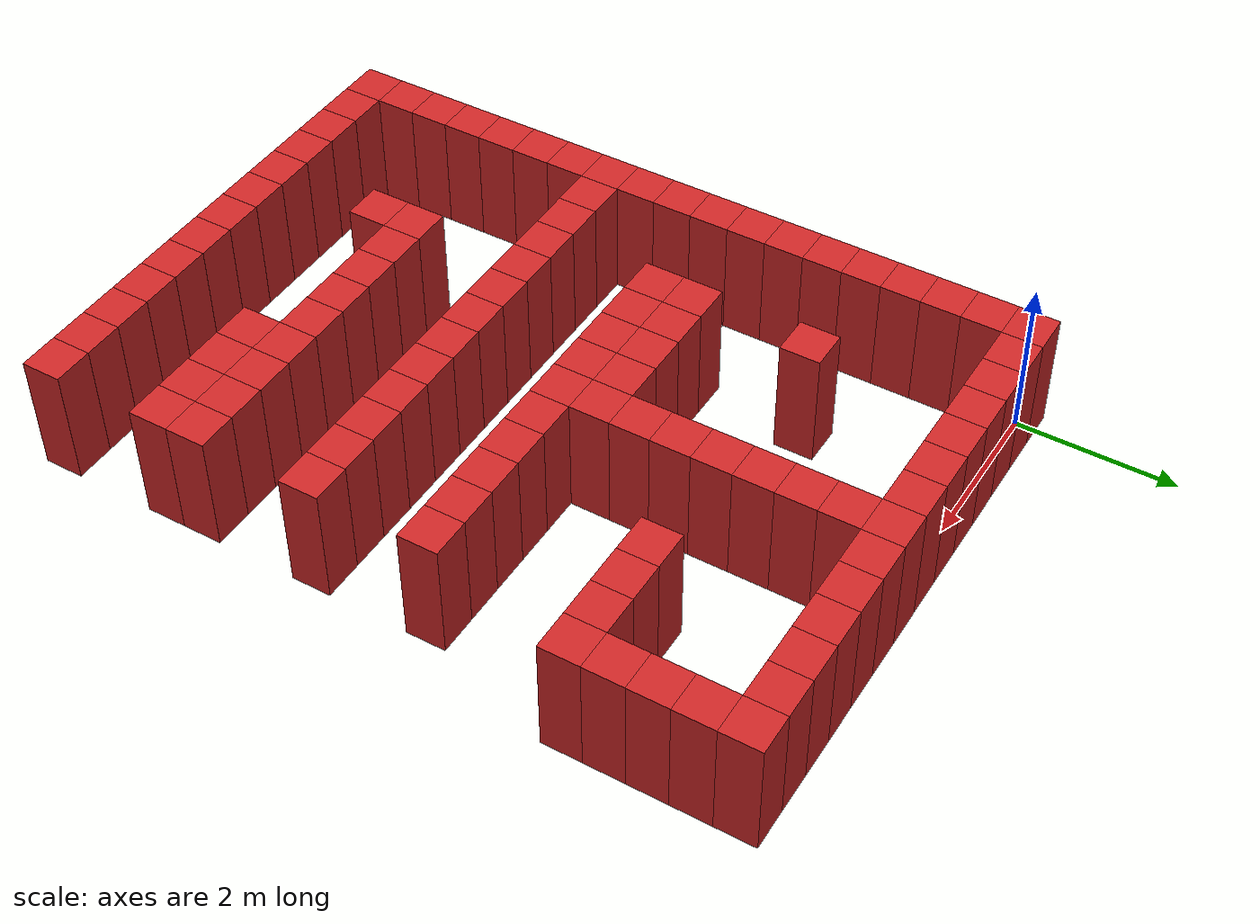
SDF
<sdf version="1.6">
 <model name="my_custom_world">
  <static>true</static>
  <link name="wall_0">
   <pose>0.0 0.0 0.75 0 0 0</pose>
   <collision name="collision"><geometry><box><size>0.5 0.5 1.5</size></box></geometry></collision>
   <visual name="visual">
    <geometry><box><size>0.5 0.5 1.5</size></box></geometry>
    <material>
     <script><uri>file://media/materials/scripts/gazebo.material</uri><name>Gazebo/Red</name></script>
    </material>
   </visual>
  </link>
  <link name="wall_1">
   <pose>0.5 0.0 0.75 0 0 0</pose>
   <collision name="collision"><geometry><box><size>0.5 0.5 1.5</size></box></geometry></collision>
   <visual name="visual">
    <geometry><box><size>0.5 0.5 1.5</size></box></geometry>
    <material>
     <script><uri>file://media/materials/scripts/gazebo.material</uri><name>Gazebo/Red</name></script>
    </material>
   </visual>
  </link>
  <link name="wall_2">
   <pose>1.0 0.0 0.75 0 0 0</pose>
   <collision name="collision"><geometry><box><size>0.5 0.5 1.5</size></box></geometry></collision>
   <visual name="visual">
    <geometry><box><size>0.5 0.5 1.5</size></box></geometry>
    <material>
     <script><uri>file://media/materials/scripts/gazebo.material</uri><name>Gazebo/Red</name></script>
    </material>
   </visual>
  </link>
  <link name="wall_3">
   <pose>1.5 0.0 0.75 0 0 0</pose>
   <collision name="collision"><geometry><box><size>0.5 0.5 1.5</size></box></geometry></collision>
   <visual name="visual">
    <geometry><box><size>0.5 0.5 1.5</size></box></geometry>
    <material>
     <script><uri>file://media/materials/scripts/gazebo.material</uri><name>Gazebo/Red</name></script>
    </material>
   </visual>
  </link>
  <link name="wall_4">
   <pose>2.0 0.0 0.75 0 0 0</pose>
   <collision name="collision"><geometry><box><size>0.5 0.5 1.5</size></box></geometry></collision>
   <visual name="visual">
    <geometry><box><size>0.5 0.5 1.5</size></box></geometry>
    <material>
     <script><uri>file://media/materials/scripts/gazebo.material</uri><name>Gazebo/Red</name></script>
    </material>
   </visual>
  </link>
  <link name="wall_5">
   <pose>2.5 0.0 0.75 0 0 0</pose>
   <collision name="collision"><geometry><box><size>0.5 0.5 1.5</size></box></geometry></collision>
   <visual name="visual">
    <geometry><box><size>0.5 0.5 1.5</size></box></geometry>
    <material>
     <script><uri>file://media/materials/scripts/gazebo.material</uri><name>Gazebo/Red</name></script>
    </material>
   </visual>
  </link>
  <link name="wall_6">
   <pose>3.0 0.0 0.75 0 0 0</pose>
   <collision name="collision"><geometry><box><size>0.5 0.5 1.5</size></box></geometry></collision>
   <visual name="visual">
    <geometry><box><size>0.5 0.5 1.5</size></box></geometry>
    <material>
     <script><uri>file://media/materials/scripts/gazebo.material</uri><name>Gazebo/Red</name></script>
    </material>
   </visual>
  </link>
  <link name="wall_7">
   <pose>3.5 0.0 0.75 0 0 0</pose>
   <collision name="collision"><geometry><box><size>0.5 0.5 1.5</size></box></geometry></collision>
   <visual name="visual">
    <geometry><box><size>0.5 0.5 1.5</size></box></geometry>
    <material>
     <script><uri>file://media/materials/scripts/gazebo.material</uri><name>Gazebo/Red</name></script>
    </material>
   </visual>
  </link>
  <link name="wall_8">
   <pose>4.0 0.0 0.75 0 0 0</pose>
   <collision name="collision"><geometry><box><size>0.5 0.5 1.5</size></box></geometry></collision>
   <visual name="visual">
    <geometry><box><size>0.5 0.5 1.5</size></box></geometry>
    <material>
     <script><uri>file://media/materials/scripts/gazebo.material</uri><name>Gazebo/Red</name></script>
    </material>
   </visual>
  </link>
  <link name="wall_9">
   <pose>4.5 0.0 0.75 0 0 0</pose>
   <collision name="collision"><geometry><box><size>0.5 0.5 1.5</size></box></geometry></collision>
   <visual name="visual">
    <geometry><box><size>0.5 0.5 1.5</size></box></geometry>
    <material>
     <script><uri>file://media/materials/scripts/gazebo.material</uri><name>Gazebo/Red</name></script>
    </material>
   </visual>
  </link>
  <link name="wall_10">
   <pose>5.0 0.0 0.75 0 0 0</pose>
   <collision name="collision"><geometry><box><size>0.5 0.5 1.5</size></box></geometry></collision>
   <visual name="visual">
    <geometry><box><size>0.5 0.5 1.5</size></box></geometry>
    <material>
     <script><uri>file://media/materials/scripts/gazebo.material</uri><name>Gazebo/Red</name></script>
    </material>
   </visual>
  </link>
  <link name="wall_11">
   <pose>5.5 0.0 0.75 0 0 0</pose>
   <collision name="collision"><geometry><box><size>0.5 0.5 1.5</size></box></geometry></collision>
   <visual name="visual">
    <geometry><box><size>0.5 0.5 1.5</size></box></geometry>
    <material>
     <script><uri>file://media/materials/scripts/gazebo.material</uri><name>Gazebo/Red</name></script>
    </material>
   </visual>
  </link>
  <link name="wall_12">
   <pose>6.0 0.0 0.75 0 0 0</pose>
   <collision name="collision"><geometry><box><size>0.5 0.5 1.5</size></box></geometry></collision>
   <visual name="visual">
    <geometry><box><size>0.5 0.5 1.5</size></box></geometry>
    <material>
     <script><uri>file://media/materials/scripts/gazebo.material</uri><name>Gazebo/Red</name></script>
    </material>
   </visual>
  </link>
  <link name="wall_13">
   <pose>6.5 0.0 0.75 0 0 0</pose>
   <collision name="collision"><geometry><box><size>0.5 0.5 1.5</size></box></geometry></collision>
   <visual name="visual">
    <geometry><box><size>0.5 0.5 1.5</size></box></geometry>
    <material>
     <script><uri>file://media/materials/scripts/gazebo.material</uri><name>Gazebo/Red</name></script>
    </material>
   </visual>
  </link>
  <link name="wall_30">
   <pose>0.0 -0.5 0.75 0 0 0</pose>
   <collision name="collision"><geometry><box><size>0.5 0.5 1.5</size></box></geometry></collision>
   <visual name="visual">
    <geometry><box><size>0.5 0.5 1.5</size></box></geometry>
    <material>
     <script><uri>file://media/materials/scripts/gazebo.material</uri><name>Gazebo/Red</name></script>
    </material>
   </visual>
  </link>
  <link name="wall_31">
   <pose>3.5 -0.5 0.75 0 0 0</pose>
   <collision name="collision"><geometry><box><size>0.5 0.5 1.5</size></box></geometry></collision>
   <visual name="visual">
    <geometry><box><size>0.5 0.5 1.5</size></box></geometry>
    <material>
     <script><uri>file://media/materials/scripts/gazebo.material</uri><name>Gazebo/Red</name></script>
    </material>
   </visual>
  </link>
  <link name="wall_32">
   <pose>6.5 -0.5 0.75 0 0 0</pose>
   <collision name="collision"><geometry><box><size>0.5 0.5 1.5</size></box></geometry></collision>
   <visual name="visual">
    <geometry><box><size>0.5 0.5 1.5</size></box></geometry>
    <material>
     <script><uri>file://media/materials/scripts/gazebo.material</uri><name>Gazebo/Red</name></script>
    </material>
   </visual>
  </link>
  <link name="wall_35">
   <pose>0.0 -1.0 0.75 0 0 0</pose>
   <collision name="collision"><geometry><box><size>0.5 0.5 1.5</size></box></geometry></collision>
   <visual name="visual">
    <geometry><box><size>0.5 0.5 1.5</size></box></geometry>
    <material>
     <script><uri>file://media/materials/scripts/gazebo.material</uri><name>Gazebo/Red</name></script>
    </material>
   </visual>
  </link>
  <link name="wall_36">
   <pose>3.5 -1.0 0.75 0 0 0</pose>
   <collision name="collision"><geometry><box><size>0.5 0.5 1.5</size></box></geometry></collision>
   <visual name="visual">
    <geometry><box><size>0.5 0.5 1.5</size></box></geometry>
    <material>
     <script><uri>file://media/materials/scripts/gazebo.material</uri><name>Gazebo/Red</name></script>
    </material>
   </visual>
  </link>
  <link name="wall_37">
   <pose>6.5 -1.0 0.75 0 0 0</pose>
   <collision name="collision"><geometry><box><size>0.5 0.5 1.5</size></box></geometry></collision>
   <visual name="visual">
    <geometry><box><size>0.5 0.5 1.5</size></box></geometry>
    <material>
     <script><uri>file://media/materials/scripts/gazebo.material</uri><name>Gazebo/Red</name></script>
    </material>
   </visual>
  </link>
  <link name="wall_40">
   <pose>0.0 -1.5 0.75 0 0 0</pose>
   <collision name="collision"><geometry><box><size>0.5 0.5 1.5</size></box></geometry></collision>
   <visual name="visual">
    <geometry><box><size>0.5 0.5 1.5</size></box></geometry>
    <material>
     <script><uri>file://media/materials/scripts/gazebo.material</uri><name>Gazebo/Red</name></script>
    </material>
   </visual>
  </link>
  <link name="wall_41">
   <pose>3.5 -1.5 0.75 0 0 0</pose>
   <collision name="collision"><geometry><box><size>0.5 0.5 1.5</size></box></geometry></collision>
   <visual name="visual">
    <geometry><box><size>0.5 0.5 1.5</size></box></geometry>
    <material>
     <script><uri>file://media/materials/scripts/gazebo.material</uri><name>Gazebo/Red</name></script>
    </material>
   </visual>
  </link>
  <link name="wall_42">
   <pose>6.5 -1.5 0.75 0 0 0</pose>
   <collision name="collision"><geometry><box><size>0.5 0.5 1.5</size></box></geometry></collision>
   <visual name="visual">
    <geometry><box><size>0.5 0.5 1.5</size></box></geometry>
    <material>
     <script><uri>file://media/materials/scripts/gazebo.material</uri><name>Gazebo/Red</name></script>
    </material>
   </visual>
  </link>
  <link name="wall_46">
   <pose>0.0 -2.0 0.75 0 0 0</pose>
   <collision name="collision"><geometry><box><size>0.5 0.5 1.5</size></box></geometry></collision>
   <visual name="visual">
    <geometry><box><size>0.5 0.5 1.5</size></box></geometry>
    <material>
     <script><uri>file://media/materials/scripts/gazebo.material</uri><name>Gazebo/Red</name></script>
    </material>
   </visual>
  </link>
  <link name="wall_47">
   <pose>1.5 -2.0 0.75 0 0 0</pose>
   <collision name="collision"><geometry><box><size>0.5 0.5 1.5</size></box></geometry></collision>
   <visual name="visual">
    <geometry><box><size>0.5 0.5 1.5</size></box></geometry>
    <material>
     <script><uri>file://media/materials/scripts/gazebo.material</uri><name>Gazebo/Red</name></script>
    </material>
   </visual>
  </link>
  <link name="wall_48">
   <pose>3.5 -2.0 0.75 0 0 0</pose>
   <collision name="collision"><geometry><box><size>0.5 0.5 1.5</size></box></geometry></collision>
   <visual name="visual">
    <geometry><box><size>0.5 0.5 1.5</size></box></geometry>
    <material>
     <script><uri>file://media/materials/scripts/gazebo.material</uri><name>Gazebo/Red</name></script>
    </material>
   </visual>
  </link>
  <link name="wall_49">
   <pose>5.0 -2.0 0.75 0 0 0</pose>
   <collision name="collision"><geometry><box><size>0.5 0.5 1.5</size></box></geometry></collision>
   <visual name="visual">
    <geometry><box><size>0.5 0.5 1.5</size></box></geometry>
    <material>
     <script><uri>file://media/materials/scripts/gazebo.material</uri><name>Gazebo/Red</name></script>
    </material>
   </visual>
  </link>
  <link name="wall_50">
   <pose>5.5 -2.0 0.75 0 0 0</pose>
   <collision name="collision"><geometry><box><size>0.5 0.5 1.5</size></box></geometry></collision>
   <visual name="visual">
    <geometry><box><size>0.5 0.5 1.5</size></box></geometry>
    <material>
     <script><uri>file://media/materials/scripts/gazebo.material</uri><name>Gazebo/Red</name></script>
    </material>
   </visual>
  </link>
  <link name="wall_51">
   <pose>6.0 -2.0 0.75 0 0 0</pose>
   <collision name="collision"><geometry><box><size>0.5 0.5 1.5</size></box></geometry></collision>
   <visual name="visual">
    <geometry><box><size>0.5 0.5 1.5</size></box></geometry>
    <material>
     <script><uri>file://media/materials/scripts/gazebo.material</uri><name>Gazebo/Red</name></script>
    </material>
   </visual>
  </link>
  <link name="wall_52">
   <pose>6.5 -2.0 0.75 0 0 0</pose>
   <collision name="collision"><geometry><box><size>0.5 0.5 1.5</size></box></geometry></collision>
   <visual name="visual">
    <geometry><box><size>0.5 0.5 1.5</size></box></geometry>
    <material>
     <script><uri>file://media/materials/scripts/gazebo.material</uri><name>Gazebo/Red</name></script>
    </material>
   </visual>
  </link>
  <link name="wall_58">
   <pose>0.0 -2.5 0.75 0 0 0</pose>
   <collision name="collision"><geometry><box><size>0.5 0.5 1.5</size></box></geometry></collision>
   <visual name="visual">
    <geometry><box><size>0.5 0.5 1.5</size></box></geometry>
    <material>
     <script><uri>file://media/materials/scripts/gazebo.material</uri><name>Gazebo/Red</name></script>
    </material>
   </visual>
  </link>
  <link name="wall_59">
   <pose>3.5 -2.5 0.75 0 0 0</pose>
   <collision name="collision"><geometry><box><size>0.5 0.5 1.5</size></box></geometry></collision>
   <visual name="visual">
    <geometry><box><size>0.5 0.5 1.5</size></box></geometry>
    <material>
     <script><uri>file://media/materials/scripts/gazebo.material</uri><name>Gazebo/Red</name></script>
    </material>
   </visual>
  </link>
  <link name="wall_63">
   <pose>0.0 -3.0 0.75 0 0 0</pose>
   <collision name="collision"><geometry><box><size>0.5 0.5 1.5</size></box></geometry></collision>
   <visual name="visual">
    <geometry><box><size>0.5 0.5 1.5</size></box></geometry>
    <material>
     <script><uri>file://media/materials/scripts/gazebo.material</uri><name>Gazebo/Red</name></script>
    </material>
   </visual>
  </link>
  <link name="wall_64">
   <pose>3.5 -3.0 0.75 0 0 0</pose>
   <collision name="collision"><geometry><box><size>0.5 0.5 1.5</size></box></geometry></collision>
   <visual name="visual">
    <geometry><box><size>0.5 0.5 1.5</size></box></geometry>
    <material>
     <script><uri>file://media/materials/scripts/gazebo.material</uri><name>Gazebo/Red</name></script>
    </material>
   </visual>
  </link>
  <link name="wall_72">
   <pose>0.0 -3.5 0.75 0 0 0</pose>
   <collision name="collision"><geometry><box><size>0.5 0.5 1.5</size></box></geometry></collision>
   <visual name="visual">
    <geometry><box><size>0.5 0.5 1.5</size></box></geometry>
    <material>
     <script><uri>file://media/materials/scripts/gazebo.material</uri><name>Gazebo/Red</name></script>
    </material>
   </visual>
  </link>
  <link name="wall_73">
   <pose>1.5 -3.5 0.75 0 0 0</pose>
   <collision name="collision"><geometry><box><size>0.5 0.5 1.5</size></box></geometry></collision>
   <visual name="visual">
    <geometry><box><size>0.5 0.5 1.5</size></box></geometry>
    <material>
     <script><uri>file://media/materials/scripts/gazebo.material</uri><name>Gazebo/Red</name></script>
    </material>
   </visual>
  </link>
  <link name="wall_74">
   <pose>2.0 -3.5 0.75 0 0 0</pose>
   <collision name="collision"><geometry><box><size>0.5 0.5 1.5</size></box></geometry></collision>
   <visual name="visual">
    <geometry><box><size>0.5 0.5 1.5</size></box></geometry>
    <material>
     <script><uri>file://media/materials/scripts/gazebo.material</uri><name>Gazebo/Red</name></script>
    </material>
   </visual>
  </link>
  <link name="wall_75">
   <pose>2.5 -3.5 0.75 0 0 0</pose>
   <collision name="collision"><geometry><box><size>0.5 0.5 1.5</size></box></geometry></collision>
   <visual name="visual">
    <geometry><box><size>0.5 0.5 1.5</size></box></geometry>
    <material>
     <script><uri>file://media/materials/scripts/gazebo.material</uri><name>Gazebo/Red</name></script>
    </material>
   </visual>
  </link>
  <link name="wall_76">
   <pose>3.0 -3.5 0.75 0 0 0</pose>
   <collision name="collision"><geometry><box><size>0.5 0.5 1.5</size></box></geometry></collision>
   <visual name="visual">
    <geometry><box><size>0.5 0.5 1.5</size></box></geometry>
    <material>
     <script><uri>file://media/materials/scripts/gazebo.material</uri><name>Gazebo/Red</name></script>
    </material>
   </visual>
  </link>
  <link name="wall_77">
   <pose>3.5 -3.5 0.75 0 0 0</pose>
   <collision name="collision"><geometry><box><size>0.5 0.5 1.5</size></box></geometry></collision>
   <visual name="visual">
    <geometry><box><size>0.5 0.5 1.5</size></box></geometry>
    <material>
     <script><uri>file://media/materials/scripts/gazebo.material</uri><name>Gazebo/Red</name></script>
    </material>
   </visual>
  </link>
  <link name="wall_80">
   <pose>0.0 -4.0 0.75 0 0 0</pose>
   <collision name="collision"><geometry><box><size>0.5 0.5 1.5</size></box></geometry></collision>
   <visual name="visual">
    <geometry><box><size>0.5 0.5 1.5</size></box></geometry>
    <material>
     <script><uri>file://media/materials/scripts/gazebo.material</uri><name>Gazebo/Red</name></script>
    </material>
   </visual>
  </link>
  <link name="wall_81">
   <pose>1.5 -4.0 0.75 0 0 0</pose>
   <collision name="collision"><geometry><box><size>0.5 0.5 1.5</size></box></geometry></collision>
   <visual name="visual">
    <geometry><box><size>0.5 0.5 1.5</size></box></geometry>
    <material>
     <script><uri>file://media/materials/scripts/gazebo.material</uri><name>Gazebo/Red</name></script>
    </material>
   </visual>
  </link>
  <link name="wall_82">
   <pose>2.0 -4.0 0.75 0 0 0</pose>
   <collision name="collision"><geometry><box><size>0.5 0.5 1.5</size></box></geometry></collision>
   <visual name="visual">
    <geometry><box><size>0.5 0.5 1.5</size></box></geometry>
    <material>
     <script><uri>file://media/materials/scripts/gazebo.material</uri><name>Gazebo/Red</name></script>
    </material>
   </visual>
  </link>
  <link name="wall_83">
   <pose>2.5 -4.0 0.75 0 0 0</pose>
   <collision name="collision"><geometry><box><size>0.5 0.5 1.5</size></box></geometry></collision>
   <visual name="visual">
    <geometry><box><size>0.5 0.5 1.5</size></box></geometry>
    <material>
     <script><uri>file://media/materials/scripts/gazebo.material</uri><name>Gazebo/Red</name></script>
    </material>
   </visual>
  </link>
  <link name="wall_84">
   <pose>3.0 -4.0 0.75 0 0 0</pose>
   <collision name="collision"><geometry><box><size>0.5 0.5 1.5</size></box></geometry></collision>
   <visual name="visual">
    <geometry><box><size>0.5 0.5 1.5</size></box></geometry>
    <material>
     <script><uri>file://media/materials/scripts/gazebo.material</uri><name>Gazebo/Red</name></script>
    </material>
   </visual>
  </link>
  <link name="wall_85">
   <pose>3.5 -4.0 0.75 0 0 0</pose>
   <collision name="collision"><geometry><box><size>0.5 0.5 1.5</size></box></geometry></collision>
   <visual name="visual">
    <geometry><box><size>0.5 0.5 1.5</size></box></geometry>
    <material>
     <script><uri>file://media/materials/scripts/gazebo.material</uri><name>Gazebo/Red</name></script>
    </material>
   </visual>
  </link>
  <link name="wall_86">
   <pose>4.0 -4.0 0.75 0 0 0</pose>
   <collision name="collision"><geometry><box><size>0.5 0.5 1.5</size></box></geometry></collision>
   <visual name="visual">
    <geometry><box><size>0.5 0.5 1.5</size></box></geometry>
    <material>
     <script><uri>file://media/materials/scripts/gazebo.material</uri><name>Gazebo/Red</name></script>
    </material>
   </visual>
  </link>
  <link name="wall_87">
   <pose>4.5 -4.0 0.75 0 0 0</pose>
   <collision name="collision"><geometry><box><size>0.5 0.5 1.5</size></box></geometry></collision>
   <visual name="visual">
    <geometry><box><size>0.5 0.5 1.5</size></box></geometry>
    <material>
     <script><uri>file://media/materials/scripts/gazebo.material</uri><name>Gazebo/Red</name></script>
    </material>
   </visual>
  </link>
  <link name="wall_88">
   <pose>5.0 -4.0 0.75 0 0 0</pose>
   <collision name="collision"><geometry><box><size>0.5 0.5 1.5</size></box></geometry></collision>
   <visual name="visual">
    <geometry><box><size>0.5 0.5 1.5</size></box></geometry>
    <material>
     <script><uri>file://media/materials/scripts/gazebo.material</uri><name>Gazebo/Red</name></script>
    </material>
   </visual>
  </link>
  <link name="wall_89">
   <pose>5.5 -4.0 0.75 0 0 0</pose>
   <collision name="collision"><geometry><box><size>0.5 0.5 1.5</size></box></geometry></collision>
   <visual name="visual">
    <geometry><box><size>0.5 0.5 1.5</size></box></geometry>
    <material>
     <script><uri>file://media/materials/scripts/gazebo.material</uri><name>Gazebo/Red</name></script>
    </material>
   </visual>
  </link>
  <link name="wall_90">
   <pose>6.0 -4.0 0.75 0 0 0</pose>
   <collision name="collision"><geometry><box><size>0.5 0.5 1.5</size></box></geometry></collision>
   <visual name="visual">
    <geometry><box><size>0.5 0.5 1.5</size></box></geometry>
    <material>
     <script><uri>file://media/materials/scripts/gazebo.material</uri><name>Gazebo/Red</name></script>
    </material>
   </visual>
  </link>
  <link name="wall_96">
   <pose>0.0 -4.5 0.75 0 0 0</pose>
   <collision name="collision"><geometry><box><size>0.5 0.5 1.5</size></box></geometry></collision>
   <visual name="visual">
    <geometry><box><size>0.5 0.5 1.5</size></box></geometry>
    <material>
     <script><uri>file://media/materials/scripts/gazebo.material</uri><name>Gazebo/Red</name></script>
    </material>
   </visual>
  </link>
  <link name="wall_99">
   <pose>0.0 -5.0 0.75 0 0 0</pose>
   <collision name="collision"><geometry><box><size>0.5 0.5 1.5</size></box></geometry></collision>
   <visual name="visual">
    <geometry><box><size>0.5 0.5 1.5</size></box></geometry>
    <material>
     <script><uri>file://media/materials/scripts/gazebo.material</uri><name>Gazebo/Red</name></script>
    </material>
   </visual>
  </link>
  <link name="wall_102">
   <pose>0.0 -5.5 0.75 0 0 0</pose>
   <collision name="collision"><geometry><box><size>0.5 0.5 1.5</size></box></geometry></collision>
   <visual name="visual">
    <geometry><box><size>0.5 0.5 1.5</size></box></geometry>
    <material>
     <script><uri>file://media/materials/scripts/gazebo.material</uri><name>Gazebo/Red</name></script>
    </material>
   </visual>
  </link>
  <link name="wall_103">
   <pose>0.5 -5.5 0.75 0 0 0</pose>
   <collision name="collision"><geometry><box><size>0.5 0.5 1.5</size></box></geometry></collision>
   <visual name="visual">
    <geometry><box><size>0.5 0.5 1.5</size></box></geometry>
    <material>
     <script><uri>file://media/materials/scripts/gazebo.material</uri><name>Gazebo/Red</name></script>
    </material>
   </visual>
  </link>
  <link name="wall_104">
   <pose>1.0 -5.5 0.75 0 0 0</pose>
   <collision name="collision"><geometry><box><size>0.5 0.5 1.5</size></box></geometry></collision>
   <visual name="visual">
    <geometry><box><size>0.5 0.5 1.5</size></box></geometry>
    <material>
     <script><uri>file://media/materials/scripts/gazebo.material</uri><name>Gazebo/Red</name></script>
    </material>
   </visual>
  </link>
  <link name="wall_105">
   <pose>1.5 -5.5 0.75 0 0 0</pose>
   <collision name="collision"><geometry><box><size>0.5 0.5 1.5</size></box></geometry></collision>
   <visual name="visual">
    <geometry><box><size>0.5 0.5 1.5</size></box></geometry>
    <material>
     <script><uri>file://media/materials/scripts/gazebo.material</uri><name>Gazebo/Red</name></script>
    </material>
   </visual>
  </link>
  <link name="wall_106">
   <pose>2.0 -5.5 0.75 0 0 0</pose>
   <collision name="collision"><geometry><box><size>0.5 0.5 1.5</size></box></geometry></collision>
   <visual name="visual">
    <geometry><box><size>0.5 0.5 1.5</size></box></geometry>
    <material>
     <script><uri>file://media/materials/scripts/gazebo.material</uri><name>Gazebo/Red</name></script>
    </material>
   </visual>
  </link>
  <link name="wall_107">
   <pose>2.5 -5.5 0.75 0 0 0</pose>
   <collision name="collision"><geometry><box><size>0.5 0.5 1.5</size></box></geometry></collision>
   <visual name="visual">
    <geometry><box><size>0.5 0.5 1.5</size></box></geometry>
    <material>
     <script><uri>file://media/materials/scripts/gazebo.material</uri><name>Gazebo/Red</name></script>
    </material>
   </visual>
  </link>
  <link name="wall_108">
   <pose>3.0 -5.5 0.75 0 0 0</pose>
   <collision name="collision"><geometry><box><size>0.5 0.5 1.5</size></box></geometry></collision>
   <visual name="visual">
    <geometry><box><size>0.5 0.5 1.5</size></box></geometry>
    <material>
     <script><uri>file://media/materials/scripts/gazebo.material</uri><name>Gazebo/Red</name></script>
    </material>
   </visual>
  </link>
  <link name="wall_109">
   <pose>3.5 -5.5 0.75 0 0 0</pose>
   <collision name="collision"><geometry><box><size>0.5 0.5 1.5</size></box></geometry></collision>
   <visual name="visual">
    <geometry><box><size>0.5 0.5 1.5</size></box></geometry>
    <material>
     <script><uri>file://media/materials/scripts/gazebo.material</uri><name>Gazebo/Red</name></script>
    </material>
   </visual>
  </link>
  <link name="wall_110">
   <pose>4.0 -5.5 0.75 0 0 0</pose>
   <collision name="collision"><geometry><box><size>0.5 0.5 1.5</size></box></geometry></collision>
   <visual name="visual">
    <geometry><box><size>0.5 0.5 1.5</size></box></geometry>
    <material>
     <script><uri>file://media/materials/scripts/gazebo.material</uri><name>Gazebo/Red</name></script>
    </material>
   </visual>
  </link>
  <link name="wall_111">
   <pose>4.5 -5.5 0.75 0 0 0</pose>
   <collision name="collision"><geometry><box><size>0.5 0.5 1.5</size></box></geometry></collision>
   <visual name="visual">
    <geometry><box><size>0.5 0.5 1.5</size></box></geometry>
    <material>
     <script><uri>file://media/materials/scripts/gazebo.material</uri><name>Gazebo/Red</name></script>
    </material>
   </visual>
  </link>
  <link name="wall_112">
   <pose>5.0 -5.5 0.75 0 0 0</pose>
   <collision name="collision"><geometry><box><size>0.5 0.5 1.5</size></box></geometry></collision>
   <visual name="visual">
    <geometry><box><size>0.5 0.5 1.5</size></box></geometry>
    <material>
     <script><uri>file://media/materials/scripts/gazebo.material</uri><name>Gazebo/Red</name></script>
    </material>
   </visual>
  </link>
  <link name="wall_113">
   <pose>5.5 -5.5 0.75 0 0 0</pose>
   <collision name="collision"><geometry><box><size>0.5 0.5 1.5</size></box></geometry></collision>
   <visual name="visual">
    <geometry><box><size>0.5 0.5 1.5</size></box></geometry>
    <material>
     <script><uri>file://media/materials/scripts/gazebo.material</uri><name>Gazebo/Red</name></script>
    </material>
   </visual>
  </link>
  <link name="wall_114">
   <pose>6.0 -5.5 0.75 0 0 0</pose>
   <collision name="collision"><geometry><box><size>0.5 0.5 1.5</size></box></geometry></collision>
   <visual name="visual">
    <geometry><box><size>0.5 0.5 1.5</size></box></geometry>
    <material>
     <script><uri>file://media/materials/scripts/gazebo.material</uri><name>Gazebo/Red</name></script>
    </material>
   </visual>
  </link>
  <link name="wall_121">
   <pose>0.0 -6.0 0.75 0 0 0</pose>
   <collision name="collision"><geometry><box><size>0.5 0.5 1.5</size></box></geometry></collision>
   <visual name="visual">
    <geometry><box><size>0.5 0.5 1.5</size></box></geometry>
    <material>
     <script><uri>file://media/materials/scripts/gazebo.material</uri><name>Gazebo/Red</name></script>
    </material>
   </visual>
  </link>
  <link name="wall_126">
   <pose>0.0 -6.5 0.75 0 0 0</pose>
   <collision name="collision"><geometry><box><size>0.5 0.5 1.5</size></box></geometry></collision>
   <visual name="visual">
    <geometry><box><size>0.5 0.5 1.5</size></box></geometry>
    <material>
     <script><uri>file://media/materials/scripts/gazebo.material</uri><name>Gazebo/Red</name></script>
    </material>
   </visual>
  </link>
  <link name="wall_130">
   <pose>0.0 -7.0 0.75 0 0 0</pose>
   <collision name="collision"><geometry><box><size>0.5 0.5 1.5</size></box></geometry></collision>
   <visual name="visual">
    <geometry><box><size>0.5 0.5 1.5</size></box></geometry>
    <material>
     <script><uri>file://media/materials/scripts/gazebo.material</uri><name>Gazebo/Red</name></script>
    </material>
   </visual>
  </link>
  <link name="wall_131">
   <pose>2.0 -7.0 0.75 0 0 0</pose>
   <collision name="collision"><geometry><box><size>0.5 0.5 1.5</size></box></geometry></collision>
   <visual name="visual">
    <geometry><box><size>0.5 0.5 1.5</size></box></geometry>
    <material>
     <script><uri>file://media/materials/scripts/gazebo.material</uri><name>Gazebo/Red</name></script>
    </material>
   </visual>
  </link>
  <link name="wall_132">
   <pose>2.5 -7.0 0.75 0 0 0</pose>
   <collision name="collision"><geometry><box><size>0.5 0.5 1.5</size></box></geometry></collision>
   <visual name="visual">
    <geometry><box><size>0.5 0.5 1.5</size></box></geometry>
    <material>
     <script><uri>file://media/materials/scripts/gazebo.material</uri><name>Gazebo/Red</name></script>
    </material>
   </visual>
  </link>
  <link name="wall_133">
   <pose>3.0 -7.0 0.75 0 0 0</pose>
   <collision name="collision"><geometry><box><size>0.5 0.5 1.5</size></box></geometry></collision>
   <visual name="visual">
    <geometry><box><size>0.5 0.5 1.5</size></box></geometry>
    <material>
     <script><uri>file://media/materials/scripts/gazebo.material</uri><name>Gazebo/Red</name></script>
    </material>
   </visual>
  </link>
  <link name="wall_134">
   <pose>3.5 -7.0 0.75 0 0 0</pose>
   <collision name="collision"><geometry><box><size>0.5 0.5 1.5</size></box></geometry></collision>
   <visual name="visual">
    <geometry><box><size>0.5 0.5 1.5</size></box></geometry>
    <material>
     <script><uri>file://media/materials/scripts/gazebo.material</uri><name>Gazebo/Red</name></script>
    </material>
   </visual>
  </link>
  <link name="wall_135">
   <pose>4.0 -7.0 0.75 0 0 0</pose>
   <collision name="collision"><geometry><box><size>0.5 0.5 1.5</size></box></geometry></collision>
   <visual name="visual">
    <geometry><box><size>0.5 0.5 1.5</size></box></geometry>
    <material>
     <script><uri>file://media/materials/scripts/gazebo.material</uri><name>Gazebo/Red</name></script>
    </material>
   </visual>
  </link>
  <link name="wall_136">
   <pose>4.5 -7.0 0.75 0 0 0</pose>
   <collision name="collision"><geometry><box><size>0.5 0.5 1.5</size></box></geometry></collision>
   <visual name="visual">
    <geometry><box><size>0.5 0.5 1.5</size></box></geometry>
    <material>
     <script><uri>file://media/materials/scripts/gazebo.material</uri><name>Gazebo/Red</name></script>
    </material>
   </visual>
  </link>
  <link name="wall_137">
   <pose>5.0 -7.0 0.75 0 0 0</pose>
   <collision name="collision"><geometry><box><size>0.5 0.5 1.5</size></box></geometry></collision>
   <visual name="visual">
    <geometry><box><size>0.5 0.5 1.5</size></box></geometry>
    <material>
     <script><uri>file://media/materials/scripts/gazebo.material</uri><name>Gazebo/Red</name></script>
    </material>
   </visual>
  </link>
  <link name="wall_138">
   <pose>5.5 -7.0 0.75 0 0 0</pose>
   <collision name="collision"><geometry><box><size>0.5 0.5 1.5</size></box></geometry></collision>
   <visual name="visual">
    <geometry><box><size>0.5 0.5 1.5</size></box></geometry>
    <material>
     <script><uri>file://media/materials/scripts/gazebo.material</uri><name>Gazebo/Red</name></script>
    </material>
   </visual>
  </link>
  <link name="wall_139">
   <pose>6.0 -7.0 0.75 0 0 0</pose>
   <collision name="collision"><geometry><box><size>0.5 0.5 1.5</size></box></geometry></collision>
   <visual name="visual">
    <geometry><box><size>0.5 0.5 1.5</size></box></geometry>
    <material>
     <script><uri>file://media/materials/scripts/gazebo.material</uri><name>Gazebo/Red</name></script>
    </material>
   </visual>
  </link>
  <link name="wall_143">
   <pose>0.0 -7.5 0.75 0 0 0</pose>
   <collision name="collision"><geometry><box><size>0.5 0.5 1.5</size></box></geometry></collision>
   <visual name="visual">
    <geometry><box><size>0.5 0.5 1.5</size></box></geometry>
    <material>
     <script><uri>file://media/materials/scripts/gazebo.material</uri><name>Gazebo/Red</name></script>
    </material>
   </visual>
  </link>
  <link name="wall_144">
   <pose>2.0 -7.5 0.75 0 0 0</pose>
   <collision name="collision"><geometry><box><size>0.5 0.5 1.5</size></box></geometry></collision>
   <visual name="visual">
    <geometry><box><size>0.5 0.5 1.5</size></box></geometry>
    <material>
     <script><uri>file://media/materials/scripts/gazebo.material</uri><name>Gazebo/Red</name></script>
    </material>
   </visual>
  </link>
  <link name="wall_145">
   <pose>4.5 -7.5 0.75 0 0 0</pose>
   <collision name="collision"><geometry><box><size>0.5 0.5 1.5</size></box></geometry></collision>
   <visual name="visual">
    <geometry><box><size>0.5 0.5 1.5</size></box></geometry>
    <material>
     <script><uri>file://media/materials/scripts/gazebo.material</uri><name>Gazebo/Red</name></script>
    </material>
   </visual>
  </link>
  <link name="wall_146">
   <pose>5.0 -7.5 0.75 0 0 0</pose>
   <collision name="collision"><geometry><box><size>0.5 0.5 1.5</size></box></geometry></collision>
   <visual name="visual">
    <geometry><box><size>0.5 0.5 1.5</size></box></geometry>
    <material>
     <script><uri>file://media/materials/scripts/gazebo.material</uri><name>Gazebo/Red</name></script>
    </material>
   </visual>
  </link>
  <link name="wall_147">
   <pose>5.5 -7.5 0.75 0 0 0</pose>
   <collision name="collision"><geometry><box><size>0.5 0.5 1.5</size></box></geometry></collision>
   <visual name="visual">
    <geometry><box><size>0.5 0.5 1.5</size></box></geometry>
    <material>
     <script><uri>file://media/materials/scripts/gazebo.material</uri><name>Gazebo/Red</name></script>
    </material>
   </visual>
  </link>
  <link name="wall_148">
   <pose>6.0 -7.5 0.75 0 0 0</pose>
   <collision name="collision"><geometry><box><size>0.5 0.5 1.5</size></box></geometry></collision>
   <visual name="visual">
    <geometry><box><size>0.5 0.5 1.5</size></box></geometry>
    <material>
     <script><uri>file://media/materials/scripts/gazebo.material</uri><name>Gazebo/Red</name></script>
    </material>
   </visual>
  </link>
  <link name="wall_163">
   <pose>0.0 -8.0 0.75 0 0 0</pose>
   <collision name="collision"><geometry><box><size>0.5 0.5 1.5</size></box></geometry></collision>
   <visual name="visual">
    <geometry><box><size>0.5 0.5 1.5</size></box></geometry>
    <material>
     <script><uri>file://media/materials/scripts/gazebo.material</uri><name>Gazebo/Red</name></script>
    </material>
   </visual>
  </link>
  <link name="wall_165">
   <pose>0.0 -8.5 0.75 0 0 0</pose>
   <collision name="collision"><geometry><box><size>0.5 0.5 1.5</size></box></geometry></collision>
   <visual name="visual">
    <geometry><box><size>0.5 0.5 1.5</size></box></geometry>
    <material>
     <script><uri>file://media/materials/scripts/gazebo.material</uri><name>Gazebo/Red</name></script>
    </material>
   </visual>
  </link>
  <link name="wall_167">
   <pose>0.0 -9.0 0.75 0 0 0</pose>
   <collision name="collision"><geometry><box><size>0.5 0.5 1.5</size></box></geometry></collision>
   <visual name="visual">
    <geometry><box><size>0.5 0.5 1.5</size></box></geometry>
    <material>
     <script><uri>file://media/materials/scripts/gazebo.material</uri><name>Gazebo/Red</name></script>
    </material>
   </visual>
  </link>
  <link name="wall_168">
   <pose>0.5 -9.0 0.75 0 0 0</pose>
   <collision name="collision"><geometry><box><size>0.5 0.5 1.5</size></box></geometry></collision>
   <visual name="visual">
    <geometry><box><size>0.5 0.5 1.5</size></box></geometry>
    <material>
     <script><uri>file://media/materials/scripts/gazebo.material</uri><name>Gazebo/Red</name></script>
    </material>
   </visual>
  </link>
  <link name="wall_169">
   <pose>1.0 -9.0 0.75 0 0 0</pose>
   <collision name="collision"><geometry><box><size>0.5 0.5 1.5</size></box></geometry></collision>
   <visual name="visual">
    <geometry><box><size>0.5 0.5 1.5</size></box></geometry>
    <material>
     <script><uri>file://media/materials/scripts/gazebo.material</uri><name>Gazebo/Red</name></script>
    </material>
   </visual>
  </link>
  <link name="wall_170">
   <pose>1.5 -9.0 0.75 0 0 0</pose>
   <collision name="collision"><geometry><box><size>0.5 0.5 1.5</size></box></geometry></collision>
   <visual name="visual">
    <geometry><box><size>0.5 0.5 1.5</size></box></geometry>
    <material>
     <script><uri>file://media/materials/scripts/gazebo.material</uri><name>Gazebo/Red</name></script>
    </material>
   </visual>
  </link>
  <link name="wall_171">
   <pose>2.0 -9.0 0.75 0 0 0</pose>
   <collision name="collision"><geometry><box><size>0.5 0.5 1.5</size></box></geometry></collision>
   <visual name="visual">
    <geometry><box><size>0.5 0.5 1.5</size></box></geometry>
    <material>
     <script><uri>file://media/materials/scripts/gazebo.material</uri><name>Gazebo/Red</name></script>
    </material>
   </visual>
  </link>
  <link name="wall_172">
   <pose>2.5 -9.0 0.75 0 0 0</pose>
   <collision name="collision"><geometry><box><size>0.5 0.5 1.5</size></box></geometry></collision>
   <visual name="visual">
    <geometry><box><size>0.5 0.5 1.5</size></box></geometry>
    <material>
     <script><uri>file://media/materials/scripts/gazebo.material</uri><name>Gazebo/Red</name></script>
    </material>
   </visual>
  </link>
  <link name="wall_173">
   <pose>3.0 -9.0 0.75 0 0 0</pose>
   <collision name="collision"><geometry><box><size>0.5 0.5 1.5</size></box></geometry></collision>
   <visual name="visual">
    <geometry><box><size>0.5 0.5 1.5</size></box></geometry>
    <material>
     <script><uri>file://media/materials/scripts/gazebo.material</uri><name>Gazebo/Red</name></script>
    </material>
   </visual>
  </link>
  <link name="wall_174">
   <pose>3.5 -9.0 0.75 0 0 0</pose>
   <collision name="collision"><geometry><box><size>0.5 0.5 1.5</size></box></geometry></collision>
   <visual name="visual">
    <geometry><box><size>0.5 0.5 1.5</size></box></geometry>
    <material>
     <script><uri>file://media/materials/scripts/gazebo.material</uri><name>Gazebo/Red</name></script>
    </material>
   </visual>
  </link>
  <link name="wall_175">
   <pose>4.0 -9.0 0.75 0 0 0</pose>
   <collision name="collision"><geometry><box><size>0.5 0.5 1.5</size></box></geometry></collision>
   <visual name="visual">
    <geometry><box><size>0.5 0.5 1.5</size></box></geometry>
    <material>
     <script><uri>file://media/materials/scripts/gazebo.material</uri><name>Gazebo/Red</name></script>
    </material>
   </visual>
  </link>
  <link name="wall_176">
   <pose>4.5 -9.0 0.75 0 0 0</pose>
   <collision name="collision"><geometry><box><size>0.5 0.5 1.5</size></box></geometry></collision>
   <visual name="visual">
    <geometry><box><size>0.5 0.5 1.5</size></box></geometry>
    <material>
     <script><uri>file://media/materials/scripts/gazebo.material</uri><name>Gazebo/Red</name></script>
    </material>
   </visual>
  </link>
  <link name="wall_177">
   <pose>5.0 -9.0 0.75 0 0 0</pose>
   <collision name="collision"><geometry><box><size>0.5 0.5 1.5</size></box></geometry></collision>
   <visual name="visual">
    <geometry><box><size>0.5 0.5 1.5</size></box></geometry>
    <material>
     <script><uri>file://media/materials/scripts/gazebo.material</uri><name>Gazebo/Red</name></script>
    </material>
   </visual>
  </link>
  <link name="wall_178">
   <pose>5.5 -9.0 0.75 0 0 0</pose>
   <collision name="collision"><geometry><box><size>0.5 0.5 1.5</size></box></geometry></collision>
   <visual name="visual">
    <geometry><box><size>0.5 0.5 1.5</size></box></geometry>
    <material>
     <script><uri>file://media/materials/scripts/gazebo.material</uri><name>Gazebo/Red</name></script>
    </material>
   </visual>
  </link>
  <link name="wall_179">
   <pose>6.0 -9.0 0.75 0 0 0</pose>
   <collision name="collision"><geometry><box><size>0.5 0.5 1.5</size></box></geometry></collision>
   <visual name="visual">
    <geometry><box><size>0.5 0.5 1.5</size></box></geometry>
    <material>
     <script><uri>file://media/materials/scripts/gazebo.material</uri><name>Gazebo/Red</name></script>
    </material>
   </visual>
  </link>
 </model>
</sdf>
